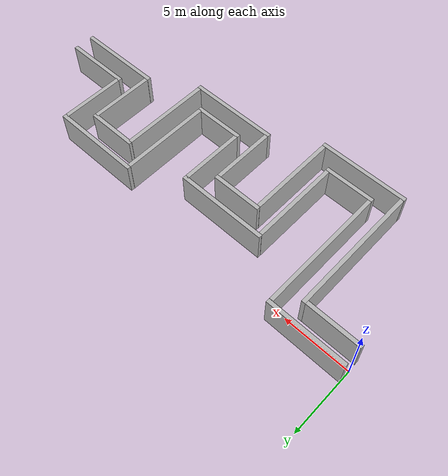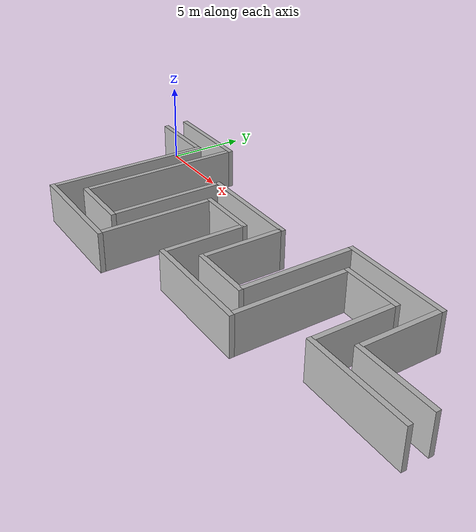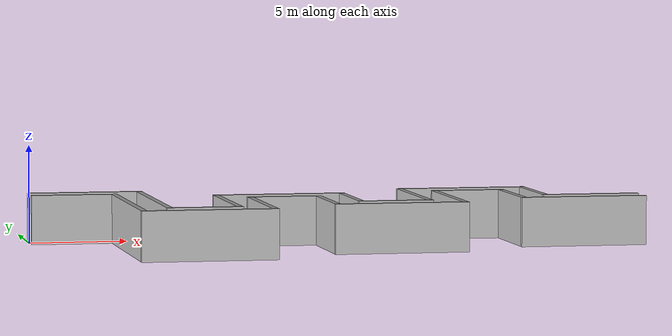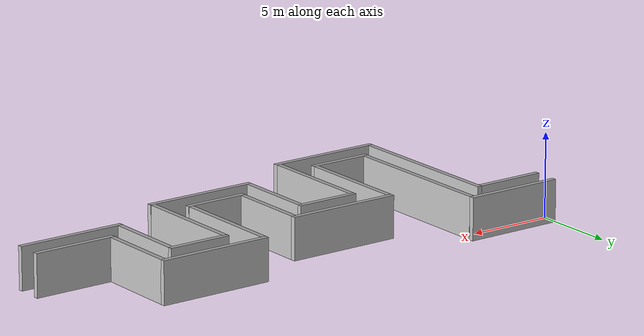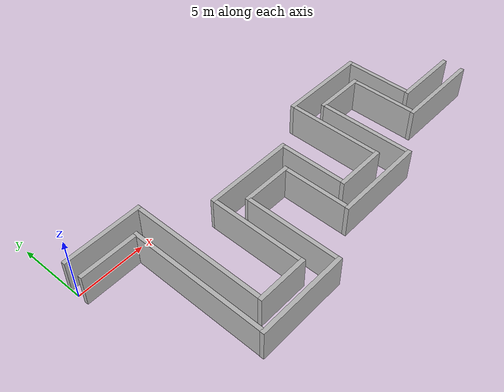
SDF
<?xml version="1.0" ?>
<sdf version="1.5">
  <model name="corridor_walls">

    <include>
      <name>w1</name>
      <pose>7.5 -9.23 0 0 0 0</pose>
      <uri>model://corridor_wall1</uri>
    </include>
    <include>
      <name>w2</name>
      <pose>12.5 -3.72 0 0 0 0</pose>
      <uri>model://corridor_wall1</uri>
    </include>
    <include>
      <name>w3</name>
      <pose>17.5 -7.23 0 0 0 0</pose>
      <uri>model://corridor_wall1</uri>
    </include>
    <include>
      <name>w4</name>
      <pose>22.5 -1.72 0 0 0 0</pose>
      <uri>model://corridor_wall1</uri>
    </include>

    <include>
      <name>w5</name>
      <pose>7.5 -10.73 0 0 0 0</pose>
      <uri>model://corridor_wall2</uri>
    </include>
    <include>
      <name>w6</name>
      <pose>12.5 -2.23 0 0 0 0</pose>
      <uri>model://corridor_wall2</uri>
    </include>
    <include>
      <name>w7</name>
      <pose>17.5 -8.72 0 0 0 0</pose>
      <uri>model://corridor_wall2</uri>
    </include>
    <include>
      <name>w8</name>
      <pose>22.5 -0.21 0 0 0 0</pose>
      <uri>model://corridor_wall2</uri>
    </include>

    <include>
      <name>w9</name>
      <pose>9.24 -5.7 0 0 0 1.5708</pose>
      <uri>model://corridor_wall2</uri>
    </include>
    <include>
      <name>w10</name>
      <pose>10.74 -7.2 0 0 0 1.5708</pose>
      <uri>model://corridor_wall2</uri>
    </include>
    <include>
      <name>w11</name>
      <pose>19.24 -3.74 0 0 0 1.5708</pose>
      <uri>model://corridor_wall2</uri>
    </include>
    <include>
      <name>w12</name>
      <pose>20.74 -5.2 0 0 0 1.5708</pose>
      <uri>model://corridor_wall2</uri>
    </include>

   <include>
      <name>w13</name>
      <pose>15.75 -4.72 0 0 0 0</pose>
      <uri>model://corridor_wall3</uri>
    </include>
   <include>
      <name>w14</name>
      <pose>14.25 -6.2 0 0 0 0</pose>
      <uri>model://corridor_wall3</uri>
    </include>
   <include>
      <name>w15</name>
      <pose>25.75 -2.72 0 0 0 0</pose>
      <uri>model://corridor_wall3</uri>
    </include>
   <include>
      <name>w16</name>
      <pose>24.25 -4.2 0 0 0 0</pose>
      <uri>model://corridor_wall3</uri>
    </include>

   <include>
      <name>w17</name>
      <pose>28.1 -5.23 0 0 0 0</pose>
      <uri>model://corridor_wall4</uri>
    </include>
   <include>
      <name>w18</name>
      <pose>27.34 -6.72 0 0 0 0</pose>
      <uri>model://corridor_wall5</uri>
    </include>
   <include>
      <name>w19</name>
      <pose>2.95 0.77 0 0 0 0</pose>
      <uri>model://corridor_wall6</uri>
    </include>
   <include>
      <name>w20</name>
      <pose>5.75 -4.24 0 0 0 0</pose>
      <uri>model://corridor_wall7</uri>
    </include>
   <include>
      <name>w21</name>
      <pose>4.26 -5.58 0 0 0 0</pose>
      <uri>model://corridor_wall8</uri>
    </include>
   <include>
      <name>w22</name>
      <pose>2.08 -0.71 0 0 0 0</pose>
      <uri>model://corridor_wall9</uri>
    </include>

  </model>
</sdf>

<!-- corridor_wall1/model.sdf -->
<sdf version="1.5">
  <model name="corridor_wall1">
    <static>true</static>
    <link name="link">
      <pose>0 0 1.25 0 0 0</pose>
      <collision name="collision">
        <geometry>
          <box>
            <size>3.8 0.3 2.5</size>
          </box>
        </geometry>
      </collision>
      <visual name="visual">
        <cast_shadows>false</cast_shadows>
        <geometry>
          <box>
            <size>3.8 0.3 2.5</size>
          </box>
        </geometry>
        <material>
          <script>
            <uri>model://corridor_wall1/materials/scripts</uri>
            <uri>model://corridor_wall1/materials/textures</uri>
            <name>vrc/corridor_wall1</name>
          </script>
        </material>
      </visual>
    </link>
  </model>
</sdf>

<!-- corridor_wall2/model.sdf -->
<sdf version="1.5">
  <model name="corridor_wall2">
    <static>true</static>
    <link name="link">
      <pose>0 0 1.25 0 0 0</pose>
      <collision name="collision">
        <geometry>
          <box>
            <size>6.8 0.3 2.5</size>
          </box>
        </geometry>
      </collision>
      <visual name="visual">
        <cast_shadows>false</cast_shadows>
        <geometry>
          <box>
            <size>6.8 0.3 2.5</size>
          </box>
        </geometry>
        <material>
          <script>
            <uri>model://corridor_wall2/materials/scripts</uri>
            <uri>model://corridor_wall2/materials/textures</uri>
            <name>vrc/corridor_wall2</name>
          </script>
        </material>
      </visual>
    </link>
  </model>
</sdf>

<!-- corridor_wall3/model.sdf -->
<sdf version="1.5">
  <model name="corridor_wall3">
    <static>true</static>
    <link name="link">
      <pose>0 0 1.25 0 0 1.5708</pose>
      <collision name="collision">
        <geometry>
          <box>
            <size>4.8 0.3 2.5</size>
          </box>
        </geometry>
      </collision>
      <visual name="visual">
        <cast_shadows>false</cast_shadows>
        <geometry>
          <box>
            <size>4.8 0.3 2.5</size>
          </box>
        </geometry>
        <material>
          <script>
            <uri>model://corridor_wall3/materials/scripts</uri>
            <uri>model://corridor_wall3/materials/textures</uri>
            <name>vrc/corridor_wall3</name>
          </script>
        </material>
      </visual>
    </link>
  </model>
</sdf>

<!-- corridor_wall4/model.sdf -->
<sdf version="1.5">
  <model name="corridor_wall4">
    <static>true</static>
    <link name="link">
      <pose>0 0 1.25 0 0 0</pose>
      <collision name="collision">
        <geometry>
          <box>
            <size>5.0 0.3 2.5</size>
          </box>
        </geometry>
      </collision>
      <visual name="visual">
        <cast_shadows>false</cast_shadows>
        <geometry>
          <box>
            <size>5.0 0.3 2.5</size>
          </box>
        </geometry>
        <material>
          <script>
            <uri>model://corridor_wall4/materials/scripts</uri>
            <uri>model://corridor_wall4/materials/textures</uri>
            <name>vrc/corridor_wall4</name>
          </script>
        </material>
      </visual>
    </link>
  </model>
</sdf>

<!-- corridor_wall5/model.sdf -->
<sdf version="1.5">
  <model name="corridor_wall5">
    <static>true</static>
    <link name="link">
      <pose>0 0 1.25 0 0 0</pose>
      <collision name="collision">
        <geometry>
          <box>
            <size>6.5 0.3 2.5</size>
          </box>
        </geometry>
      </collision>
      <visual name="visual">
        <cast_shadows>false</cast_shadows>
        <geometry>
          <box>
            <size>6.5 0.3 2.5</size>
          </box>
        </geometry>
        <material>
          <script>
            <uri>model://corridor_wall5/materials/scripts</uri>
            <uri>model://corridor_wall5/materials/textures</uri>
            <name>vrc/corridor_wall5</name>
          </script>
        </material>
      </visual>
    </link>
  </model>
</sdf>

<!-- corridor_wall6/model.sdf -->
<sdf version="1.5">
  <model name="corridor_wall6">
    <static>true</static>
    <link name="link">
      <pose>0 0 1.25 0 0 0</pose>
      <collision name="collision">
        <geometry>
          <box>
            <size>5.9 0.3 2.5</size>
          </box>
        </geometry>
      </collision>
      <visual name="visual">
        <cast_shadows>false</cast_shadows>
        <geometry>
          <box>
            <size>5.9 0.3 2.5</size>
          </box>
        </geometry>
        <material>
          <script>
            <uri>model://corridor_wall6/materials/scripts</uri>
            <uri>model://corridor_wall6/materials/textures</uri>
            <name>vrc/corridor_wall6</name>
          </script>
        </material>
      </visual>
    </link>
  </model>
</sdf>

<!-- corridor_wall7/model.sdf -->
<sdf version="1.5">
  <model name="corridor_wall7">
    <static>true</static>
    <link name="link">
      <pose>0 0 1.25 0 0 1.5708</pose>
      <collision name="collision">
        <geometry>
          <box>
            <size>9.7 0.3 2.5</size>
          </box>
        </geometry>
      </collision>
      <visual name="visual">
        <cast_shadows>false</cast_shadows>
        <geometry>
          <box>
            <size>9.7 0.3 2.5</size>
          </box>
        </geometry>
        <material>
          <script>
            <uri>model://corridor_wall7/materials/scripts</uri>
            <uri>model://corridor_wall7/materials/textures</uri>
            <name>vrc/corridor_wall7</name>
          </script>
        </material>
      </visual>
    </link>
  </model>
</sdf>

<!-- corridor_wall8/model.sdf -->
<sdf version="1.5">
  <model name="corridor_wall8">
    <static>true</static>
    <link name="link">
      <pose>0 0 1.25 0 0 1.5708</pose>
      <collision name="collision">
        <geometry>
          <box>
            <size>10.05 0.3 2.5</size>
          </box>
        </geometry>
      </collision>
      <visual name="visual">
        <cast_shadows>false</cast_shadows>
        <geometry>
          <box>
            <size>10.05 0.3 2.5</size>
          </box>
        </geometry>
        <material>
          <script>
            <uri>model://corridor_wall8/materials/scripts</uri>
            <uri>model://corridor_wall8/materials/textures</uri>
            <name>vrc/corridor_wall8</name>
          </script>
        </material>
      </visual>
    </link>
  </model>
</sdf>

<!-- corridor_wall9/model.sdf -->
<sdf version="1.5">
  <model name="corridor_wall9">
    <static>true</static>
    <link name="link">
      <pose>0 0 1.25 0 0 0</pose>
      <collision name="collision">
        <geometry>
          <box>
            <size>4.15 0.3 2.5</size>
          </box>
        </geometry>
      </collision>
      <visual name="visual">
        <cast_shadows>false</cast_shadows>
        <geometry>
          <box>
            <size>4.15 0.3 2.5</size>
          </box>
        </geometry>
        <material>
          <script>
            <uri>model://corridor_wall9/materials/scripts</uri>
            <uri>model://corridor_wall9/materials/textures</uri>
            <name>vrc/corridor_wall9</name>
          </script>
        </material>
      </visual>
    </link>
  </model>
</sdf>
